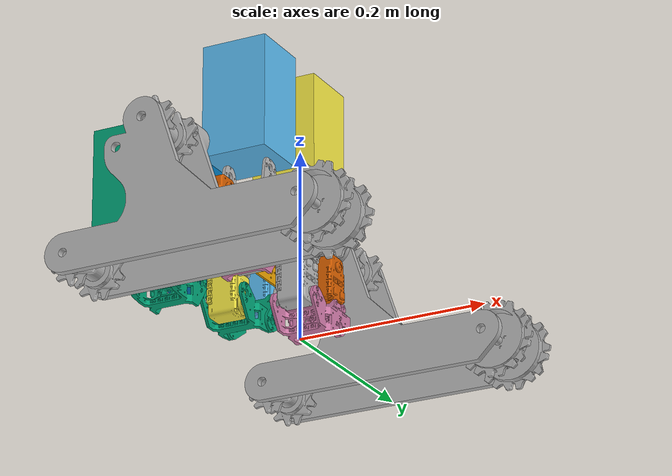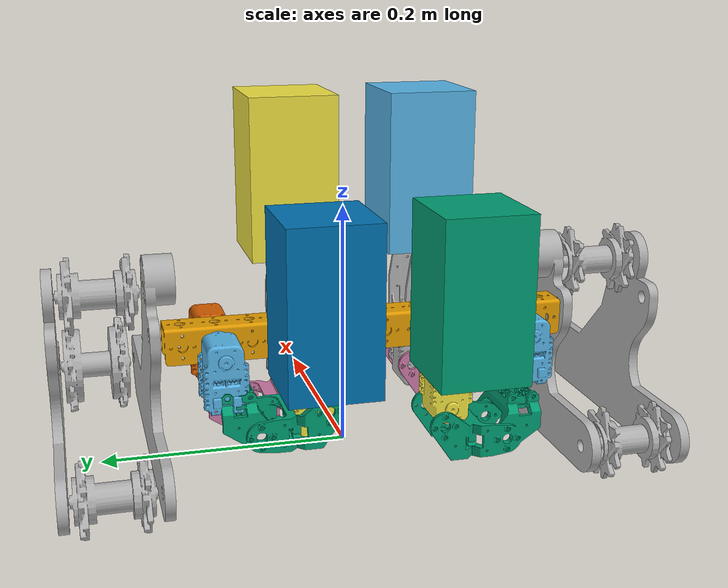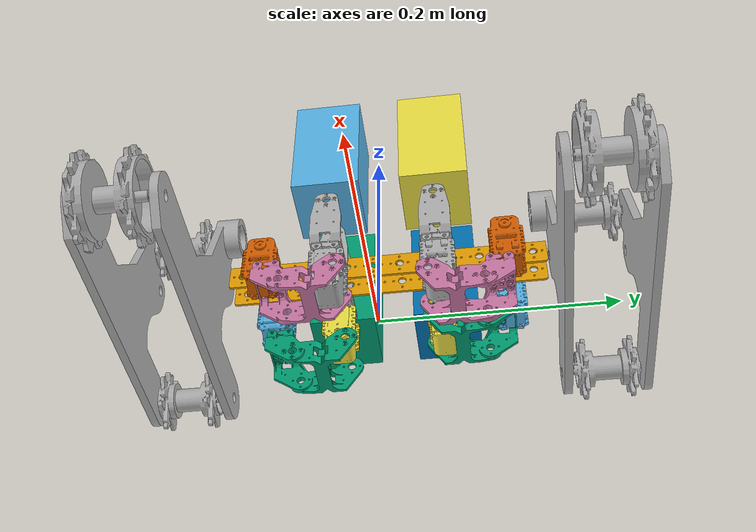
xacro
<?xml version="1.0" ?>
<robot name="aaly">
  <joint name="aaly__knee_left_back_joint" type="revolute">
    <parent link="aaly__base_link"/>
    <child link="aaly__knee_left_back_motor"/>
    <origin rpy="0  0  0" xyz="-0.107    0.1144   0.12127"/>
    <axis xyz="-1  0  0"/>
    <limit effort="200.0" lower="0.0" upper="5.23598775598" velocity="1.0"/>
  </joint>
  <joint name="aaly__leg_left_back_joint" type="fixed">
    <parent link="aaly__knee_left_back_motor"/>
    <child link="aaly__leg_left_back"/>
    <origin rpy="0  0  0" xyz="-0.0015  -0.0239  -0.05622"/>
    <axis xyz="0  0  0"/>
    <limit effort="0" lower="0" upper="0" velocity="0"/>
  </joint>
  <joint name="aaly__thigh_left_back_motor_joint" type="revolute">
    <parent link="aaly__leg_left_back"/>
    <child link="aaly__thigh_left_back_motor"/>
    <origin rpy="3.14159  0       0" xyz="-0.0015  -0.0395   0.00622"/>
    <axis xyz="1  0  0"/>
    <limit effort="200.0" lower="0.0" upper="5.23598775598" velocity="1.0"/>
  </joint>
  <joint name="aaly__thigh_left_back_joint" type="fixed">
    <parent link="aaly__thigh_left_back_motor"/>
    <child link="aaly__thigh_left_back"/>
    <origin rpy="-3.14159  0      -1.57079" xyz="0       0.001   -0.03322"/>
    <axis xyz="0  0  0"/>
    <limit effort="0" lower="0" upper="0" velocity="0"/>
  </joint>
  <joint name="aaly__knee_left_front_joint" type="revolute">
    <parent link="aaly__base_link"/>
    <child link="aaly__knee_left_front_motor"/>
    <origin rpy="0       0       3.14159" xyz="-0.034    0.1144   0.12127"/>
    <axis xyz="1  0  0"/>
    <limit effort="200.0" lower="0.0" upper="5.23598775598" velocity="1.0"/>
  </joint>
  <joint name="aaly__leg_left_front_joint" type="fixed">
    <parent link="aaly__knee_left_front_motor"/>
    <child link="aaly__leg_left_front"/>
    <origin rpy="0       0      -3.14159" xyz="-0.00376  0.0239  -0.05622"/>
    <axis xyz="0  0  0"/>
    <limit effort="0" lower="0" upper="0" velocity="0"/>
  </joint>
  <joint name="aaly__thigh_left_front_motor_joint" type="revolute">
    <parent link="aaly__leg_left_front"/>
    <child link="aaly__thigh_left_front_motor"/>
    <origin rpy="3.14159  0       3.14159" xyz="-0.00076 -0.0395   0.00622"/>
    <axis xyz="-1  0  0"/>
    <limit effort="200.0" lower="0.0" upper="5.23598775598" velocity="1.0"/>
  </joint>
  <joint name="aaly__thigh_left_joint" type="fixed">
    <parent link="aaly__thigh_left_front_motor"/>
    <child link="aaly__thigh_left_front"/>
    <origin rpy="3.14159  0       1.57079" xyz="0      -0.001   -0.03322"/>
    <axis xyz="0  0  0"/>
    <limit effort="0" lower="0" upper="0" velocity="0"/>
  </joint>
  <joint name="aaly__knee_right_back_joint" type="revolute">
    <parent link="aaly__base_link"/>
    <child link="aaly__knee_right_back_motor"/>
    <origin rpy="0  0  0" xyz="-0.107   -0.1144   0.12127"/>
    <axis xyz="1  0  0"/>
    <limit effort="200.0" lower="0.0" upper="5.23598775598" velocity="1.0"/>
  </joint>
  <joint name="aaly__leg_right_back_joint" type="fixed">
    <parent link="aaly__knee_right_back_motor"/>
    <child link="aaly__leg_right_back"/>
    <origin rpy="0  0  0" xyz="-0.0015   0.0239  -0.05622"/>
    <axis xyz="0  0  0"/>
    <limit effort="0" lower="0" upper="0" velocity="0"/>
  </joint>
  <joint name="aaly__thigh_right_back_motor_joint" type="revolute">
    <parent link="aaly__leg_right_back"/>
    <child link="aaly__thigh_right_back_motor"/>
    <origin rpy="3.14159  0       0" xyz="-0.0015   0.0395   0.00622"/>
    <axis xyz="-1  0  0"/>
    <limit effort="200.0" lower="0.0" upper="5.23598775598" velocity="1.0"/>
  </joint>
  <joint name="aaly__thigh_right_back_joint" type="fixed">
    <parent link="aaly__thigh_right_back_motor"/>
    <child link="aaly__thigh_right_back"/>
    <origin rpy="3.11859  0      -1.57079" xyz="0       0.001   -0.05622"/>
    <axis xyz="0  0  0"/>
    <limit effort="0" lower="0" upper="0" velocity="0"/>
  </joint>
  <joint name="aaly__knee_right_front_joint" type="revolute">
    <parent link="aaly__base_link"/>
    <child link="aaly__knee_right_front_motor"/>
    <origin rpy="0       0       3.14159" xyz="-0.034   -0.1144   0.12127"/>
    <axis xyz="-1  0  0"/>
    <limit effort="200.0" lower="0.0" upper="5.23598775598" velocity="1.0"/>
  </joint>
  <joint name="aaly__leg_right_front_joint" type="fixed">
    <parent link="aaly__knee_right_front_motor"/>
    <child link="aaly__leg_right_front"/>
    <origin rpy="0       0      -3.14159" xyz="-0.00376 -0.0239  -0.05622"/>
    <axis xyz="0  0  0"/>
    <limit effort="0" lower="0" upper="0" velocity="0"/>
  </joint>
  <joint name="aaly__thigh_right_front_motor_joint" type="revolute">
    <parent link="aaly__leg_right_front"/>
    <child link="aaly__thigh_right_front_motor"/>
    <origin rpy="3.14159  0       0" xyz="0.0005   0.0395   0.00622"/>
    <axis xyz="-1  0  0"/>
    <limit effort="200.0" lower="0.0" upper="5.23598775598" velocity="1.0"/>
  </joint>
  <joint name="aaly__thigh_right_joint" type="fixed">
    <parent link="aaly__thigh_right_front_motor"/>
    <child link="aaly__thigh_right_front"/>
    <origin rpy="-3.14159  0      -1.57079" xyz="-0.00025  0.001   -0.03322"/>
    <axis xyz="0  0  0"/>
    <limit effort="0" lower="0" upper="0" velocity="0"/>
  </joint>

  <joint name="aaly__body_front_right_joint" type="revolute">
    <parent link="aaly__thigh_right_front"/>
    <child link="aaly__body1"/>
    <origin rpy="0       0      -1.57079" xyz="0      0      0.0655"/>
    <axis xyz="1  0  0"/>
    <limit effort="200.0" lower="-5.23598775598" upper="5.23598775598" velocity="1.0"/>
  </joint>
  <joint name="aaly__body_back_right_joint" type="revolute">
    <parent link="aaly__thigh_right_back"/>
    <child link="aaly__body2"/>
    <origin rpy="0       0.023   -1.57079" xyz="0      -0.00097  0.04248"/>
    <axis xyz="1  0  0"/>
    <limit effort="200.0" lower="-5.23598775598" upper="5.23598775598" velocity="1.0"/>
  </joint>
  <joint name="aaly__body_front_left_joint" type="revolute">
    <parent link="aaly__thigh_left_front"/>
    <child link="aaly__body3"/>
    <origin rpy="0       0      -1.57079" xyz="0.002  -0.001   0.0655"/>
    <axis xyz="1  0  0"/>
    <limit effort="200.0" lower="-5.23598775598" upper="5.23598775598" velocity="1.0"/>
  </joint>
  <joint name="aaly__body_back_left_joint" type="revolute">
    <parent link="aaly__thigh_left_back"/>
    <child link="aaly__body4"/>
    <origin rpy="0       0      -1.57079" xyz="0.002   0      0.0655"/>
    <axis xyz="1  0  0"/>
    <limit effort="200.0" lower="-5.23598775598" upper="5.23598775598" velocity="1.0"/>
  </joint>

  <joint name="aaly__Right_Track_Side_joint" type="fixed">
    <parent link="aaly__base_link"/>
    <child link="aaly__Right_Side_Track_Support"/>
    <origin rpy="0  0  0" xyz="-0.07122 -0.15412  0.12835"/>
    <axis xyz="0  0  0"/>
    <limit effort="0" lower="0" upper="0" velocity="0"/>
  </joint>
  <joint name="aaly__Left_Track_Side_joint" type="fixed">
    <parent link="aaly__base_link"/>
    <child link="aaly__Left_Side_Track_Support"/>
    <origin rpy="0  0  0" xyz="-0.07122  0.15412  0.12835"/>
    <axis xyz="0  0  0"/>
    <limit effort="0" lower="0" upper="0" velocity="0"/>
  </joint>
  <joint name="aaly__drum_joint1" type="continuous">
    <parent link="aaly__Right_Side_Track_Support"/>
    <child link="aaly__drum1"/>
    <origin rpy="1.57079  0       0" xyz="-0.05361 -0.042   -0.09835"/>
    <axis xyz="0  0 -1"/>
  </joint>
  <joint name="aaly__drum_joint2" type="continuous">
    <parent link="aaly__Left_Side_Track_Support"/>
    <child link="aaly__drum2"/>
    <origin rpy="1.57079  0       0" xyz="-0.05361  0.042   -0.09835"/>
    <axis xyz="0  0 -1"/>
  </joint>
  <joint name="aaly__drum_joint3" type="continuous">
    <parent link="aaly__Right_Side_Track_Support"/>
    <child link="aaly__drum3"/>
    <origin rpy="1.57079  0       0" xyz="0.20006 -0.042   -0.09073"/>
    <axis xyz="0  0 -1"/>
  </joint>
  <joint name="aaly__drum_joint4" type="continuous">
    <parent link="aaly__Left_Side_Track_Support"/>
    <child link="aaly__drum4"/>
    <origin rpy="1.57079  0       0" xyz="0.20006  0.042   -0.09073"/>
    <axis xyz="0  0 -1"/>
  </joint>
  <joint name="aaly__drum_joint5" type="continuous">
    <parent link="aaly__Right_Side_Track_Support"/>
    <child link="aaly__drum5"/>
    <origin rpy="1.57079  0       0" xyz="0.02517 -0.042    0.02598"/>
    <axis xyz="0  0 -1"/>
  </joint>
  <joint name="aaly__drum_joint6" type="continuous">
    <parent link="aaly__Left_Side_Track_Support"/>
    <child link="aaly__drum6"/>
    <origin rpy="1.57079  0       0" xyz="0.02517  0.042    0.02598"/>
    <axis xyz="0  0 -1"/>
  </joint>
  <joint name="aaly__Right_Side_Track_Cover_joint" type="fixed">
    <parent link="aaly__Right_Side_Track_Support"/>
    <child link="aaly__Right_Side_Track_Cover"/>
    <origin rpy="0  0  0" xyz="0.05779 -0.077   -0.06673"/>
    <axis xyz="0  0  0"/>
    <limit effort="0" lower="0" upper="0" velocity="0"/>
  </joint>
  <joint name="aaly__Left_Side_Track_Cover_joint" type="fixed">
    <parent link="aaly__Left_Side_Track_Support"/>
    <child link="aaly__Left_Side_Track_Cover"/>
    <origin rpy="0  0  0" xyz="0.05779  0.077   -0.06673"/>
    <axis xyz="0  0  0"/>
    <limit effort="0" lower="0" upper="0" velocity="0"/>
  </joint>
  <link name="aaly__base_link">
    <inertial>
      <mass value="0.36"/>
      <origin rpy="0  0  0" xyz="0  0  0"/>
      <inertia ixx="0.002814604013121458" ixy="0.0" ixz="0.0" iyy="7.17760831593746e-05" iyz="0.0" izz="0.0028301708345758957"/>
    </inertial>
    <collision name="aaly__base_link_collision">
      <origin rpy="0  0  0" xyz="-0.07     0       0.12427"/>
      <geometry>
        <box size="0.026988 0.3000 0.026988"/>
      </geometry>
    </collision>
    <visual name="aaly__base_link_visual">
      <origin rpy="0  0  0" xyz="-0.07     0       0.12427"/>
      <geometry>
        <mesh filename="package://aaly_urdf/meshes/Horizontal_Support_Bar_ASB-512.dae" scale="1.0 1.0 1.0"/>
      </geometry>
    </visual>
  </link>
  <link name="aaly__knee_left_back_motor">
    <inertial>
      <mass value="0.05"/>
      <origin rpy="0  0  0" xyz="0     0    -0.012"/>
      <inertia ixx="1.2166047261762851e-05" ixy="0.0" ixz="0.0" iyy="1.4468363602365426e-05" iyz="0.0" izz="7.993829324731787e-06"/>
    </inertial>
    <collision name="aaly__knee_left_back_motor_collision">
      <origin rpy="0  0  0" xyz="0  0  0"/>
      <geometry>
        <box size="0.04 0.032 0.050"/>
      </geometry>
    </collision>
    <visual name="aaly__knee_left_back_motor_visual">
      <origin rpy="0  0  0" xyz="0  0  0"/>
      <geometry>
        <mesh filename="package://aaly_urdf/meshes/AX12-A_origin_same_as_center_of_mass.stl" scale="1.0 1.0 1.0"/>
      </geometry>
    </visual>
  </link>
  <link name="aaly__leg_left_back">
    <inertial>
      <mass value="0.04"/>
      <origin rpy="0  0  0" xyz="0  0  0"/>
      <inertia ixx="2.69490184257131e-05" ixy="0.0" ixz="0.0" iyy="1.843324918045141e-05" iyz="0.0" izz="3.454538603564566e-05"/>
    </inertial>
    <collision name="aaly__leg_left_back_collision">
      <origin rpy="0  0  0" xyz="0  0  0"/>
      <geometry>
        <box size="0.04 0.04 0.025"/>
      </geometry>
    </collision>
    <visual name="aaly__leg_left_back_visual">
      <origin rpy="0  0  0" xyz="0  0  0"/>
      <geometry>
        <mesh filename="package://aaly_urdf/meshes/Leg_Left_Back.stl" scale="1.0 1.0 1.0"/>
      </geometry>
    </visual>
  </link>
  <link name="aaly__thigh_left_back_motor">
    <inertial>
      <mass value="0.05"/>
      <origin rpy="0  0  0" xyz="0     0    -0.012"/>
      <inertia ixx="1.2166047261762851e-05" ixy="0.0" ixz="0.0" iyy="1.4468363602365426e-05" iyz="0.0" izz="7.993829324731787e-06"/>
    </inertial>
    <collision name="aaly__thigh_left_back_motor_collision">
      <origin rpy="0  0  0" xyz="0  0  0"/>
      <geometry>
        <box size="0.04 0.032 0.050"/>
      </geometry>
    </collision>
    <visual name="aaly__thigh_left_back_motor_visual">
      <origin rpy="0  0  0" xyz="0  0  0"/>
      <geometry>
        <mesh filename="package://aaly_urdf/meshes/AX12-A_origin_same_as_center_of_mass.stl" scale="1.0 1.0 1.0"/>
      </geometry>
    </visual>
  </link>
  <link name="aaly__thigh_left_back">
    <inertial>
      <mass value="0.03"/>
      <origin rpy="0  0  0" xyz="0  0  0"/>
      <inertia ixx="2.0103848503359805e-05" ixy="0.0" ixz="0.0" iyy="1.2296884544899207e-05" iyz="0.0" izz="1.2205253512522909e-05"/>
    </inertial>
    <collision name="aaly__thigh_left_back_collision">
      <origin rpy="0  0  0" xyz="0     0     0.023"/>
      <geometry>
        <box size="0.04 0.032 0.030"/>
      </geometry>
    </collision>
    <visual name="aaly__thigh_left_back_visual">
      <origin rpy="0  0  0" xyz="0     0     0.023"/>
      <geometry>
        <mesh filename="package://aaly_urdf/meshes/Thigh.dae" scale="1.0 1.0 1.0"/>
      </geometry>
    </visual>
  </link>
  <link name="aaly__knee_left_front_motor">
    <inertial>
      <mass value="0.05"/>
      <origin rpy="0  0  0" xyz="0     0    -0.012"/>
      <inertia ixx="1.2166047261762851e-05" ixy="0.0" ixz="0.0" iyy="1.4468363602365426e-05" iyz="0.0" izz="7.993829324731787e-06"/>
    </inertial>
    <collision name="aaly__knee_left_front_motor_collision">
      <origin rpy="0  0  0" xyz="0  0  0"/>
      <geometry>
        <box size="0.04 0.032 0.050"/>
      </geometry>
    </collision>
    <visual name="aaly__knee_left_front_motor_visual">
      <origin rpy="0  0  0" xyz="0  0  0"/>
      <geometry>
        <mesh filename="package://aaly_urdf/meshes/AX12-A_origin_same_as_center_of_mass.stl" scale="1.0 1.0 1.0"/>
      </geometry>
    </visual>
  </link>
  <link name="aaly__leg_left_front">
    <inertial>
      <mass value="0.04"/>
      <origin rpy="0  0  0" xyz="0  0  0"/>
      <inertia ixx="2.69490184257131e-05" ixy="0.0" ixz="0.0" iyy="1.843324918045141e-05" iyz="0.0" izz="3.454538603564566e-05"/>
    </inertial>
    <collision name="aaly__leg_left_front_collision">
      <origin rpy="0  0  0" xyz="0  0  0"/>
      <geometry>
        <box size="0.04 0.04 0.025"/>
      </geometry>
    </collision>
    <visual name="aaly__leg_left_front_visual">
      <origin rpy="0  0  0" xyz="0  0  0"/>
      <geometry>
        <mesh filename="package://aaly_urdf/meshes/Leg_Left_Front.stl" scale="1.0 1.0 1.0"/>
      </geometry>
    </visual>
  </link>
  <link name="aaly__thigh_left_front_motor">
    <inertial>
      <mass value="0.05"/>
      <origin rpy="0  0  0" xyz="0     0    -0.012"/>
      <inertia ixx="1.2166047261762851e-05" ixy="0.0" ixz="0.0" iyy="1.4468363602365426e-05" iyz="0.0" izz="7.993829324731787e-06"/>
    </inertial>
    <collision name="aaly__thigh_left_front_motor_collision">
      <origin rpy="0  0  0" xyz="0  0  0"/>
      <geometry>
        <box size="0.04 0.032 0.050"/>
      </geometry>
    </collision>
    <visual name="aaly__thigh_left_front_motor_visual">
      <origin rpy="0  0  0" xyz="0  0  0"/>
      <geometry>
        <mesh filename="package://aaly_urdf/meshes/AX12-A_origin_same_as_center_of_mass.stl" scale="1.0 1.0 1.0"/>
      </geometry>
    </visual>
  </link>
  <link name="aaly__thigh_left_front">
    <inertial>
      <mass value="0.03"/>
      <origin rpy="0  0  0" xyz="0  0  0"/>
      <inertia ixx="2.0103848503359805e-05" ixy="0.0" ixz="0.0" iyy="1.2296884544899207e-05" iyz="0.0" izz="1.2205253512522909e-05"/>
    </inertial>
    <collision name="aaly__thigh_left_front_collision">
      <origin rpy="0  0  0" xyz="0     0     0.023"/>
      <geometry>
        <box size="0.04 0.032 0.030"/>
      </geometry>
    </collision>
    <visual name="aaly__thigh_left_front_visual">
      <origin rpy="0  0  0" xyz="0     0     0.023"/>
      <geometry>
        <mesh filename="package://aaly_urdf/meshes/Thigh.dae" scale="1.0 1.0 1.0"/>
      </geometry>
    </visual>
  </link>
  <link name="aaly__knee_right_back_motor">
    <inertial>
      <mass value="0.05"/>
      <origin rpy="0  0  0" xyz="0     0    -0.012"/>
      <inertia ixx="1.2166047261762851e-05" ixy="0.0" ixz="0.0" iyy="1.4468363602365426e-05" iyz="0.0" izz="7.993829324731787e-06"/>
    </inertial>
    <collision name="aaly__knee_right_back_motor_collision">
      <origin rpy="0  0  0" xyz="0  0  0"/>
      <geometry>
        <box size="0.04 0.032 0.050"/>
      </geometry>
    </collision>
    <visual name="aaly__knee_right_back_motor_visual">
      <origin rpy="0  0  0" xyz="0  0  0"/>
      <geometry>
        <mesh filename="package://aaly_urdf/meshes/AX12-A_origin_same_as_center_of_mass.stl" scale="1.0 1.0 1.0"/>
      </geometry>
    </visual>
  </link>
  <link name="aaly__leg_right_back">
    <inertial>
      <mass value="0.04"/>
      <origin rpy="0  0  0" xyz="0  0  0"/>
      <inertia ixx="2.69490184257131e-05" ixy="0.0" ixz="0.0" iyy="1.843324918045141e-05" iyz="0.0" izz="3.454538603564566e-05"/>
    </inertial>
    <collision name="aaly__leg_right_back_collision">
      <origin rpy="0  0  0" xyz="0  0  0"/>
      <geometry>
        <box size="0.04 0.04 0.025"/>
      </geometry>
    </collision>
    <visual name="aaly__leg_right_back_visual">
      <origin rpy="0  0  0" xyz="0  0  0"/>
      <geometry>
        <mesh filename="package://aaly_urdf/meshes/Leg_Right_Back.stl" scale="1.0 1.0 1.0"/>
      </geometry>
    </visual>
  </link>
  <link name="aaly__thigh_right_back_motor">
    <inertial>
      <mass value="0.05"/>
      <origin rpy="0  0  0" xyz="0     0    -0.012"/>
      <inertia ixx="1.2166047261762851e-05" ixy="0.0" ixz="0.0" iyy="1.4468363602365426e-05" iyz="0.0" izz="7.993829324731787e-06"/>
    </inertial>
    <collision name="aaly__thigh_right_back_motor_collision">
      <origin rpy="0  0  0" xyz="0  0  0"/>
      <geometry>
        <box size="0.04 0.032 0.050"/>
      </geometry>
    </collision>
    <visual name="aaly__thigh_right_back_motor_visual">
      <origin rpy="0  0  0" xyz="0  0  0"/>
      <geometry>
        <mesh filename="package://aaly_urdf/meshes/AX12-A_origin_same_as_center_of_mass.stl" scale="1.0 1.0 1.0"/>
      </geometry>
    </visual>
  </link>
  <link name="aaly__thigh_right_back">
    <inertial>
      <mass value="0.03"/>
      <origin rpy="0  0  0" xyz="0  0  0"/>
      <inertia ixx="2.0103848503359805e-05" ixy="0.0" ixz="0.0" iyy="1.2296884544899207e-05" iyz="0.0" izz="1.2205253512522909e-05"/>
    </inertial>
    <collision name="aaly__thigh_right_back_collision">
      <origin rpy="0.023  0     0" xyz="0  0  0"/>
      <geometry>
        <box size="0.04 0.032 0.030"/>
      </geometry>
    </collision>
    <visual name="aaly__thigh_right_back_visual">
      <origin rpy="0.023  0     0" xyz="0  0  0"/>
      <geometry>
        <mesh filename="package://aaly_urdf/meshes/Thigh.dae" scale="1.0 1.0 1.0"/>
      </geometry>
    </visual>
  </link>
  <link name="aaly__knee_right_front_motor">
    <inertial>
      <mass value="0.05"/>
      <origin rpy="0  0  0" xyz="0     0    -0.012"/>
      <inertia ixx="1.2166047261762851e-05" ixy="0.0" ixz="0.0" iyy="1.4468363602365426e-05" iyz="0.0" izz="7.993829324731787e-06"/>
    </inertial>
    <collision name="aaly__knee_right_front_motor_collision">
      <origin rpy="0  0  0" xyz="0  0  0"/>
      <geometry>
        <box size="0.04 0.032 0.050"/>
      </geometry>
    </collision>
    <visual name="aaly__knee_right_front_motor_visual">
      <origin rpy="0  0  0" xyz="0  0  0"/>
      <geometry>
        <mesh filename="package://aaly_urdf/meshes/AX12-A_origin_same_as_center_of_mass.stl" scale="1.0 1.0 1.0"/>
      </geometry>
    </visual>
  </link>
  <link name="aaly__leg_right_front">
    <inertial>
      <mass value="0.04"/>
      <origin rpy="0  0  0" xyz="0  0  0"/>
      <inertia ixx="2.69490184257131e-05" ixy="0.0" ixz="0.0" iyy="1.843324918045141e-05" iyz="0.0" izz="3.454538603564566e-05"/>
    </inertial>
    <collision name="aaly__leg_right_front_collision">
      <origin rpy="0  0  0" xyz="0  0  0"/>
      <geometry>
        <box size="0.04 0.04 0.025"/>
      </geometry>
    </collision>
    <visual name="aaly__leg_right_front_visual">
      <origin rpy="0  0  0" xyz="0  0  0"/>
      <geometry>
        <mesh filename="package://aaly_urdf/meshes/Leg_Right_Front.stl" scale="1.0 1.0 1.0"/>
      </geometry>
    </visual>
  </link>
  <link name="aaly__thigh_right_front_motor">
    <inertial>
      <mass value="0.05"/>
      <origin rpy="0  0  0" xyz="0     0    -0.012"/>
      <inertia ixx="1.2166047261762851e-05" ixy="0.0" ixz="0.0" iyy="1.4468363602365426e-05" iyz="0.0" izz="7.993829324731787e-06"/>
    </inertial>
    <collision name="aaly__thigh_right_front_motor_collision">
      <origin rpy="0  0  0" xyz="0  0  0"/>
      <geometry>
        <box size="0.04 0.032 0.050"/>
      </geometry>
    </collision>
    <visual name="aaly__thigh_right_front_motor_visual">
      <origin rpy="0  0  0" xyz="0  0  0"/>
      <geometry>
        <mesh filename="package://aaly_urdf/meshes/AX12-A_origin_same_as_center_of_mass.stl" scale="1.0 1.0 1.0"/>
      </geometry>
    </visual>
  </link>
  <link name="aaly__thigh_right_front">
    <inertial>
      <mass value="0.03"/>
      <origin rpy="0  0  0" xyz="0  0  0"/>
      <inertia ixx="2.0103848503359805e-05" ixy="0.0" ixz="0.0" iyy="1.2296884544899207e-05" iyz="0.0" izz="1.2205253512522909e-05"/>
    </inertial>
    <collision name="aaly__thigh_right_front_collision">
      <origin rpy="0  0  0" xyz="0     0     0.023"/>
      <geometry>
        <box size="0.04 0.032 0.030"/>
      </geometry>
    </collision>
    <visual name="aaly__thigh_right_front_visual">
      <origin rpy="0  0  0" xyz="0     0     0.023"/>
      <geometry>
        <mesh filename="package://aaly_urdf/meshes/Thigh.dae" scale="1.0 1.0 1.0"/>
      </geometry>
    </visual>
  </link>
  <link name="aaly__body1">
    <inertial>
      <mass value="0.05"/>
      <origin rpy="0  0  0" xyz="0  0  0"/>
      <inertia ixx="7.760416666666666e-05" ixy="0.0" ixz="0.0" iyy="8.041666666666667e-05" iyz="0.0" izz="3.802083333333334e-05"/>
    </inertial>
    <collision name="aaly__body1_collision">
      <origin rpy="0  0  0" xyz="0     0     0.065"/>
      <geometry>
        <box size="0.07 0.065 0.12"/>
      </geometry>
    </collision>
    <visual name="aaly__body1_visual">
      <origin rpy="0  0  0" xyz="0     0     0.065"/>
      <geometry>
        <box size="0.07 0.065 0.12"/>
      </geometry>
    </visual>
  </link>
  <link name="aaly__body2">
    <inertial>
      <mass value="0.05"/>
      <origin rpy="0  0  0" xyz="0  0  0"/>
      <inertia ixx="7.760416666666666e-05" ixy="0.0" ixz="0.0" iyy="8.041666666666667e-05" iyz="0.0" izz="3.802083333333334e-05"/>
    </inertial>
    <collision name="aaly__body2_collision">
      <origin rpy="0  0  0" xyz="-0.045  0     0"/>
      <geometry>
        <box size="0.07 0.065 0.12"/>
      </geometry>
    </collision>
    <visual name="aaly__body2_visual">
      <origin rpy="0  0  0" xyz="-0.045  0     0"/>
      <geometry>
        <box size="0.07 0.065 0.12"/>
      </geometry>
    </visual>
  </link>
  <link name="aaly__body3">
    <inertial>
      <mass value="0.05"/>
      <origin rpy="0  0  0" xyz="0  0  0"/>
      <inertia ixx="7.760416666666666e-05" ixy="0.0" ixz="0.0" iyy="8.041666666666667e-05" iyz="0.0" izz="3.802083333333334e-05"/>
    </inertial>
    <collision name="aaly__body1_collision">
      <origin rpy="0  0  0" xyz="0     0     0.065"/>
      <geometry>
        <box size="0.07 0.065 0.12"/>
      </geometry>
    </collision>
    <visual name="aaly__body1_visual">
      <origin rpy="0  0  0" xyz="0     0     0.065"/>
      <geometry>
        <box size="0.07 0.065 0.12"/>
      </geometry>
    </visual>
  </link>
  <link name="aaly__body4">
    <inertial>
      <mass value="0.05"/>
      <origin rpy="0  0  0" xyz="0  0  0"/>
      <inertia ixx="7.760416666666666e-05" ixy="0.0" ixz="0.0" iyy="8.041666666666667e-05" iyz="0.0" izz="3.802083333333334e-05"/>
    </inertial>
    <collision name="aaly__body2_collision">
      <origin rpy="0  0  0" xyz="-0.045  0     0"/>
      <geometry>
        <box size="0.07 0.065 0.12"/>
      </geometry>
    </collision>
    <visual name="aaly__body2_visual">
      <origin rpy="0  0  0" xyz="-0.045  0     0"/>
      <geometry>
        <box size="0.07 0.065 0.12"/>
      </geometry>
    </visual>
  </link>
  <link name="aaly__Right_Side_Track_Support">
    <inertial>
      <mass value="0.15"/>
      <origin rpy="0  0  0" xyz="0  0  0"/>
      <inertia ixx="0.00010520383183873306" ixy="-9.148702320585518e-07" ixz="3.7647066170409417e-05" iyy="0.00032229348287662684" iyz="2.722753728174257e-06" izz="0.0002182293357979667"/>
    </inertial>
    <collision name="aaly__Right_Side_Track_Support_collision">
      <origin rpy="0  0  0" xyz="0.05749 -0.004   -0.04273"/>
      <geometry>
        <mesh filename="package://aaly_urdf/meshes/Track_Support_Collision_Mesh.dae" scale="1.0 1.0 1.0"/>
      </geometry>
    </collision>
    <visual name="aaly__Right_Side_Track_Support_visual">
      <origin rpy="0  0  0" xyz="0.05749 -0.004   -0.05773"/>
      <geometry>
        <mesh filename="package://aaly_urdf/meshes/Track_Support_Left_Side.dae" scale="1.0 1.0 1.0"/>
      </geometry>
    </visual>
  </link>
  <link name="aaly__Left_Side_Track_Support">
    <inertial>
      <mass value="0.15"/>
      <origin rpy="0  0  0" xyz="0  0  0"/>
      <inertia ixx="0.00010520383183873306" ixy="-9.148702320585518e-07" ixz="3.7647066170409417e-05" iyy="0.00032229348287662684" iyz="2.722753728174257e-06" izz="0.0002182293357979667"/>
    </inertial>
    <collision name="aaly__Left_Side_Track_Support_collision">
      <origin rpy="0  0  0" xyz="0.05749  0.004   -0.04273"/>
      <geometry>
        <mesh filename="package://aaly_urdf/meshes/Track_Support_Collision_Mesh.dae" scale="1.0 1.0 1.0"/>
      </geometry>
    </collision>
    <visual name="aaly__Left_Side_Track_Support_visual">
      <origin rpy="0  0  0" xyz="0.05749  0.004   -0.05773"/>
      <geometry>
        <mesh filename="package://aaly_urdf/meshes/Track_Support_Right_Side.dae" scale="1.0 1.0 1.0"/>
      </geometry>
    </visual>
  </link>
  <link name="aaly__drum1">
    <inertial>
      <mass value="0.1"/>
      <origin rpy="0  0  0" xyz="0  0  0"/>
      <inertia ixx="2.787405275215884e-05" ixy="0.0" ixz="0.0" iyy="2.7903424778241207e-05" iyz="0.0" izz="1.7975679962403806e-05"/>
    </inertial>
    <collision name="aaly__drum1_collision">
      <origin rpy="0  0  0" xyz="0  0  0"/>
      <geometry>
        <cylinder length="0.05124" radius="0.026925"/>
      </geometry>
    </collision>
    <visual name="aaly__drum1_visual">
      <origin rpy="0  0  0" xyz="0  0  0"/>
      <geometry>
        <mesh filename="package://aaly_urdf/meshes/Lynx_Sproket6in_Hub13.dae" scale="1.0 1.0 1.0"/>
      </geometry>
    </visual>
  </link>
  <link name="aaly__drum2">
    <inertial>
      <mass value="0.1"/>
      <origin rpy="0  0  0" xyz="0  0  0"/>
      <inertia ixx="2.787405275215884e-05" ixy="0.0" ixz="0.0" iyy="2.7903424778241207e-05" iyz="0.0" izz="1.7975679962403806e-05"/>
    </inertial>
    <collision name="aaly__drum2_collision">
      <origin rpy="0  0  0" xyz="0  0  0"/>
      <geometry>
        <cylinder length="0.05124" radius="0.026925"/>
      </geometry>
    </collision>
    <visual name="aaly__drum2_visual">
      <origin rpy="0  0  0" xyz="0  0  0"/>
      <geometry>
        <mesh filename="package://aaly_urdf/meshes/Lynx_Sproket6in_Hub13.dae" scale="1.0 1.0 1.0"/>
      </geometry>
    </visual>
  </link>
  <link name="aaly__drum3">
    <inertial>
      <mass value="0.2"/>
      <origin rpy="0  0  0" xyz="0  0  0"/>
      <inertia ixx="0.00010790475895594018" ixy="0.0" ixz="0.0" iyy="0.00010774994581540083" iyz="0.0" izz="0.00012753506517633218"/>
    </inertial>
    <collision name="aaly__drum3_collision">
      <origin rpy="0  0  0" xyz="0  0  0"/>
      <geometry>
        <cylinder length="0.05124" radius="0.036625"/>
      </geometry>
    </collision>
    <visual name="aaly__drum3_visual">
      <origin rpy="0  0  0" xyz="0  0  0"/>
      <geometry>
        <mesh filename="package://aaly_urdf/meshes/Lynx_Sproket9in_Hub13.dae" scale="1.0 1.0 1.0"/>
      </geometry>
    </visual>
  </link>
  <link name="aaly__drum4">
    <inertial>
      <mass value="0.2"/>
      <origin rpy="0  0  0" xyz="0  0  0"/>
      <inertia ixx="0.00010790475895594018" ixy="0.0" ixz="0.0" iyy="0.00010774994581540083" iyz="0.0" izz="0.00012753506517633218"/>
    </inertial>
    <collision name="aaly__drum4_collision">
      <origin rpy="0  0  0" xyz="0  0  0"/>
      <geometry>
        <cylinder length="0.05124" radius="0.036625"/>
      </geometry>
    </collision>
    <visual name="aaly__drum4_visual">
      <origin rpy="0  0  0" xyz="0  0  0"/>
      <geometry>
        <mesh filename="package://aaly_urdf/meshes/Lynx_Sproket9in_Hub13.dae" scale="1.0 1.0 1.0"/>
      </geometry>
    </visual>
  </link>
  <link name="aaly__drum5">
    <inertial>
      <mass value="0.1"/>
      <origin rpy="0  0  0" xyz="0  0  0"/>
      <inertia ixx="2.787405275215884e-05" ixy="0.0" ixz="0.0" iyy="2.7903424778241207e-05" iyz="0.0" izz="1.7975679962403806e-05"/>
    </inertial>
    <collision name="aaly__drum5_collision">
      <origin rpy="0  0  0" xyz="0  0  0"/>
      <geometry>
        <cylinder length="0.05124" radius="0.027025"/>
      </geometry>
    </collision>
    <visual name="aaly__drum5_visual">
      <origin rpy="0  0  0" xyz="0  0  0"/>
      <geometry>
        <mesh filename="package://aaly_urdf/meshes/Lynx_Sproket6in_Hub13.dae" scale="1.0 1.0 1.0"/>
      </geometry>
    </visual>
  </link>
  <link name="aaly__drum6">
    <inertial>
      <mass value="0.1"/>
      <origin rpy="0  0  0" xyz="0  0  0"/>
      <inertia ixx="2.787405275215884e-05" ixy="0.0" ixz="0.0" iyy="2.7903424778241207e-05" iyz="0.0" izz="1.7975679962403806e-05"/>
    </inertial>
    <collision name="aaly__drum6_collision">
      <origin rpy="0  0  0" xyz="0  0  0"/>
      <geometry>
        <cylinder length="0.05124" radius="0.027025"/>
      </geometry>
    </collision>
    <visual name="aaly__drum6_visual">
      <origin rpy="0  0  0" xyz="0  0  0"/>
      <geometry>
        <mesh filename="package://aaly_urdf/meshes/Lynx_Sproket6in_Hub13.dae" scale="1.0 1.0 1.0"/>
      </geometry>
    </visual>
  </link>
  <link name="aaly__Right_Side_Track_Cover">
    <inertial>
      <mass value="0.15"/>
      <origin rpy="0  0  0" xyz="0  0  0"/>
      <inertia ixx="0.00010520383183873306" ixy="-9.148702320585518e-07" ixz="3.7647066170409417e-05" iyy="0.00032229348287662684" iyz="2.722753728174257e-06" izz="0.0002182293357979667"/>
    </inertial>
    <collision name="aaly__Right_Side_Track_Cover_collision">
      <origin rpy="0  0  0" xyz="0     0     0.015"/>
      <geometry>
        <mesh filename="package://aaly_urdf/meshes/Track_Support_Collision_Mesh.dae" scale="1.0 1.0 1.0"/>
      </geometry>
    </collision>
    <visual name="aaly__Right_Side_Track_Cover_visual">
      <origin rpy="0  0  0" xyz="0  0  0"/>
      <geometry>
        <mesh filename="package://aaly_urdf/meshes/Track_Support_Cover_Side.dae" scale="1.0 1.0 1.0"/>
      </geometry>
    </visual>
  </link>
  <link name="aaly__Left_Side_Track_Cover">
    <inertial>
      <mass value="0.15"/>
      <origin rpy="0  0  0" xyz="0  0  0"/>
      <inertia ixx="0.00010520383183873306" ixy="-9.148702320585518e-07" ixz="3.7647066170409417e-05" iyy="0.00032229348287662684" iyz="2.722753728174257e-06" izz="0.0002182293357979667"/>
    </inertial>
    <collision name="aaly__Left_Side_Track_Cover_collision">
      <origin rpy="0  0  0" xyz="0     0     0.015"/>
      <geometry>
        <mesh filename="package://aaly_urdf/meshes/Track_Support_Collision_Mesh.dae" scale="1.0 1.0 1.0"/>
      </geometry>
    </collision>
    <visual name="aaly__Left_Side_Track_Cover_visual">
      <origin rpy="0  0  0" xyz="0  0  0"/>
      <geometry>
        <mesh filename="package://aaly_urdf/meshes/Track_Support_Cover_Side.dae" scale="1.0 1.0 1.0"/>
      </geometry>
    </visual>
  </link>

  <transmission name="tran1">
    <type>transmission_interface/SimpleTransmission</type>
    <joint name="aaly__knee_left_back_joint">
      <hardwareInterface>hardware_interface/PositionJointInterface</hardwareInterface>
    </joint>
    <actuator name="aaly__knee_left_back_motor">
      <hardwareInterface>hardware_interface/PositionJointInterface</hardwareInterface>
      <mechanicalReduction>1</mechanicalReduction>
    </actuator>
  </transmission>

  <transmission name="tran2">
    <type>transmission_interface/SimpleTransmission</type>
    <joint name="aaly__knee_left_front_joint">
      <hardwareInterface>hardware_interface/PositionJointInterface</hardwareInterface>
    </joint>
    <actuator name="aaly__knee_left_front_motor">
      <hardwareInterface>hardware_interface/PositionJointInterface</hardwareInterface>
      <mechanicalReduction>1</mechanicalReduction>
    </actuator>
  </transmission>

  <transmission name="tran3">
    <type>transmission_interface/SimpleTransmission</type>
    <joint name="aaly__knee_right_back_joint">
      <hardwareInterface>hardware_interface/PositionJointInterface</hardwareInterface>
    </joint>
    <actuator name="aaly__knee_right_back_motor">
      <hardwareInterface>hardware_interface/PositionJointInterface</hardwareInterface>
      <mechanicalReduction>1</mechanicalReduction>
    </actuator>
  </transmission>

  <transmission name="tran4">
    <type>transmission_interface/SimpleTransmission</type>
    <joint name="aaly__knee_right_front_joint">
      <hardwareInterface>hardware_interface/PositionJointInterface</hardwareInterface>
    </joint>
    <actuator name="aaly__knee_right_front_motor">
      <hardwareInterface>hardware_interface/PositionJointInterface</hardwareInterface>
      <mechanicalReduction>1</mechanicalReduction>
    </actuator>
  </transmission>
  <transmission name="tran5">
    <type>transmission_interface/SimpleTransmission</type>
    <joint name="aaly__thigh_left_back_motor_joint">
      <hardwareInterface>hardware_interface/PositionJointInterface</hardwareInterface>
    </joint>
    <actuator name="aaly__thigh_left_back_motor">
      <hardwareInterface>hardware_interface/PositionJointInterface</hardwareInterface>
      <mechanicalReduction>1</mechanicalReduction>
    </actuator>
  </transmission>

  <transmission name="tran6">
    <type>transmission_interface/SimpleTransmission</type>
    <joint name="aaly__thigh_left_front_motor_joint">
      <hardwareInterface>hardware_interface/PositionJointInterface</hardwareInterface>
    </joint>
    <actuator name="aaly__thigh_left_front_motor">
      <hardwareInterface>hardware_interface/PositionJointInterface</hardwareInterface>
      <mechanicalReduction>1</mechanicalReduction>
    </actuator>
  </transmission>

  <transmission name="tran7">
    <type>transmission_interface/SimpleTransmission</type>
    <joint name="aaly__thigh_right_back_motor_joint">
      <hardwareInterface>hardware_interface/PositionJointInterface</hardwareInterface>
    </joint>
    <actuator name="aaly__thigh_right_back_motor">
      <hardwareInterface>hardware_interface/PositionJointInterface</hardwareInterface>
      <mechanicalReduction>1</mechanicalReduction>
    </actuator>
  </transmission>

  <transmission name="tran8">
    <type>transmission_interface/SimpleTransmission</type>
    <joint name="aaly__thigh_right_front_motor_joint">
      <hardwareInterface>hardware_interface/PositionJointInterface</hardwareInterface>
    </joint>
    <actuator name="aaly__thigh_right_front_motor">
      <hardwareInterface>hardware_interface/PositionJointInterface</hardwareInterface>
      <mechanicalReduction>1</mechanicalReduction>
    </actuator>
  </transmission>

  <transmission name="tran9">
    <type>transmission_interface/SimpleTransmission</type>
    <joint name="aaly__body_front_right_joint">
      <hardwareInterface>hardware_interface/PositionJointInterface</hardwareInterface>
    </joint>
    <actuator name="body_front_right_joint">
      <hardwareInterface>hardware_interface/PositionJointInterface</hardwareInterface>
      <mechanicalReduction>1</mechanicalReduction>
    </actuator>
  </transmission>

  <transmission name="tran10">
    <type>transmission_interface/SimpleTransmission</type>
    <joint name="aaly__body_back_right_joint">
      <hardwareInterface>hardware_interface/PositionJointInterface</hardwareInterface>
    </joint>
    <actuator name="body_back_right_joint">
      <hardwareInterface>hardware_interface/PositionJointInterface</hardwareInterface>
      <mechanicalReduction>1</mechanicalReduction>
    </actuator>
  </transmission>

  <transmission name="tran11">
    <type>transmission_interface/SimpleTransmission</type>
    <joint name="aaly__body_front_left_joint">
      <hardwareInterface>hardware_interface/PositionJointInterface</hardwareInterface>
    </joint>
    <actuator name="body_front_left_joint">
      <hardwareInterface>hardware_interface/PositionJointInterface</hardwareInterface>
      <mechanicalReduction>1</mechanicalReduction>
    </actuator>
  </transmission>

  <transmission name="tran12">
    <type>transmission_interface/SimpleTransmission</type>
    <joint name="aaly__body_back_left_joint">
      <hardwareInterface>hardware_interface/PositionJointInterface</hardwareInterface>
    </joint>
    <actuator name="body_back_left_joint">
      <hardwareInterface>hardware_interface/PositionJointInterface</hardwareInterface>
      <mechanicalReduction>1</mechanicalReduction>
    </actuator>
  </transmission>

</robot>
